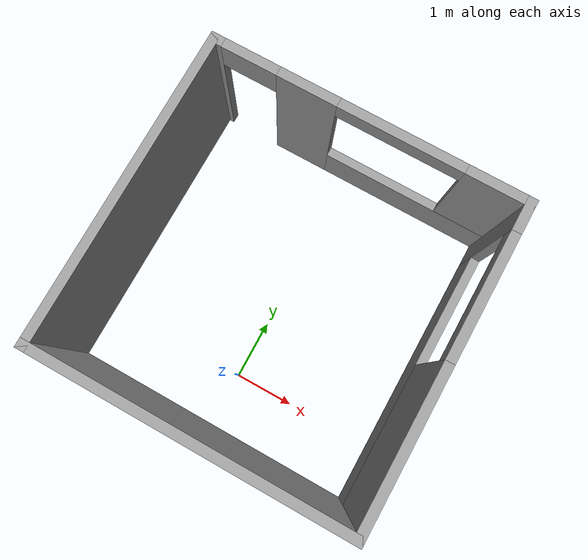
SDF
<?xml version='1.0'?>
<sdf version='1.7'>
  <model name='office_environment'>
    <pose>0 1.5 0 0 -0 0</pose>
    <link name='Wall_30'>
      <collision name='Wall_30_Collision'>
        <geometry>
          <box>
            <size>5.15 0.15 2.5</size>
          </box>
        </geometry>
        <pose>0 0 1.25 0 -0 0</pose>
      </collision>
      <visual name='Wall_30_Visual'>
        <pose>0 0 1.25 0 -0 0</pose>
        <geometry>
          <box>
            <size>5.15 0.15 2.5</size>
          </box>
        </geometry>
        <material>
          <script>
            <uri>file://media/materials/scripts/gazebo.material</uri>
            <name>Gazebo/Grey</name>
          </script>
          <ambient>1 1 1 1</ambient>
        </material>
        <meta>
          <layer>0</layer>
        </meta>
      </visual>
      <pose>0 -2.5 0 0 -0 0</pose>
    </link>
    <link name='Wall_38'>
      <collision name='Wall_38_Collision'>
        <geometry>
          <box>
            <size>5.15 0.15 2.5</size>
          </box>
        </geometry>
        <pose>0 0 1.25 0 -0 0</pose>
      </collision>
      <visual name='Wall_38_Visual'>
        <pose>0 0 1.25 0 -0 0</pose>
        <geometry>
          <box>
            <size>5.15 0.15 2.5</size>
          </box>
        </geometry>
        <material>
          <script>
            <uri>file://media/materials/scripts/gazebo.material</uri>
            <name>Gazebo/Grey</name>
          </script>
          <ambient>1 1 1 1</ambient>
        </material>
        <meta>
          <layer>0</layer>
        </meta>
      </visual>
      <pose>-2.5 0 0 0 -0 1.5708</pose>
    </link>
    <link name='Wall_40'>
      <pose>0 2.5 0 0 -0 0</pose>
      <visual name='Wall_40_Visual_0'>
        <pose>-2.46031 0 1.25 0 -0 0</pose>
        <geometry>
          <box>
            <size>0.229383 0.15 2.5</size>
          </box>
        </geometry>
        <material>
          <script>
            <uri>file://media/materials/scripts/gazebo.material</uri>
            <name>Gazebo/Grey</name>
          </script>
          <ambient>1 1 1 1</ambient>
        </material>
        <meta>
          <layer>0</layer>
        </meta>
      </visual>
      <collision name='Wall_40_Collision_0'>
        <geometry>
          <box>
            <size>0.229383 0.15 2.5</size>
          </box>
        </geometry>
        <pose>-2.46031 0 1.25 0 -0 0</pose>
      </collision>
      <visual name='Wall_40_Visual_1'>
        <pose>-0.961522 0 1.25 0 -0 0</pose>
        <geometry>
          <box>
            <size>0.968191 0.15 2.5</size>
          </box>
        </geometry>
        <material>
          <script>
            <uri>file://media/materials/scripts/gazebo.material</uri>
            <name>Gazebo/Grey</name>
          </script>
          <ambient>1 1 1 1</ambient>
        </material>
        <meta>
          <layer>0</layer>
        </meta>
      </visual>
      <collision name='Wall_40_Collision_1'>
        <geometry>
          <box>
            <size>0.968191 0.15 2.5</size>
          </box>
        </geometry>
        <pose>-0.961522 0 1.25 0 -0 0</pose>
      </collision>
      <visual name='Wall_40_Visual_2'>
        <pose>1.04879 0 0.35 0 -0 0</pose>
        <geometry>
          <box>
            <size>3.05243 0.15 0.7</size>
          </box>
        </geometry>
        <material>
          <script>
            <uri>file://media/materials/scripts/gazebo.material</uri>
            <name>Gazebo/Grey</name>
          </script>
          <ambient>1 1 1 1</ambient>
        </material>
        <meta>
          <layer>0</layer>
        </meta>
      </visual>
      <collision name='Wall_40_Collision_2'>
        <geometry>
          <box>
            <size>3.05243 0.15 0.7</size>
          </box>
        </geometry>
        <pose>1.04879 0 0.35 0 -0 0</pose>
      </collision>
      <visual name='Wall_40_Visual_3'>
        <pose>2.04879 0 1.6 0 -0 0</pose>
        <geometry>
          <box>
            <size>1.05243 0.15 1.8</size>
          </box>
        </geometry>
        <material>
          <script>
            <uri>file://media/materials/scripts/gazebo.material</uri>
            <name>Gazebo/Grey</name>
          </script>
          <ambient>1 1 1 1</ambient>
        </material>
        <meta>
          <layer>0</layer>
        </meta>
      </visual>
      <collision name='Wall_40_Collision_3'>
        <geometry>
          <box>
            <size>1.05243 0.15 1.8</size>
          </box>
        </geometry>
        <pose>2.04879 0 1.6 0 -0 0</pose>
      </collision>
      <visual name='Wall_40_Visual_4'>
        <pose>-1.89562 0 2.25 0 -0 0</pose>
        <geometry>
          <box>
            <size>0.9 0.15 0.5</size>
          </box>
        </geometry>
        <material>
          <script>
            <uri>file://media/materials/scripts/gazebo.material</uri>
            <name>Gazebo/Grey</name>
          </script>
          <ambient>1 1 1 1</ambient>
        </material>
        <meta>
          <layer>0</layer>
        </meta>
      </visual>
      <collision name='Wall_40_Collision_4'>
        <geometry>
          <box>
            <size>0.9 0.15 0.5</size>
          </box>
        </geometry>
        <pose>-1.89562 0 2.25 0 -0 0</pose>
      </collision>
      <visual name='Wall_40_Visual_5'>
        <pose>0.522574 0 2.35 0 -0 0</pose>
        <geometry>
          <box>
            <size>2 0.15 0.3</size>
          </box>
        </geometry>
        <material>
          <script>
            <uri>file://media/materials/scripts/gazebo.material</uri>
            <name>Gazebo/Grey</name>
          </script>
          <ambient>1 1 1 1</ambient>
        </material>
        <meta>
          <layer>0</layer>
        </meta>
      </visual>
      <collision name='Wall_40_Collision_5'>
        <geometry>
          <box>
            <size>2 0.15 0.3</size>
          </box>
        </geometry>
        <pose>0.522574 0 2.35 0 -0 0</pose>
      </collision>
    </link>
    <link name='Wall_42'>
      <pose>2.5 0 0 0 -0 -1.5708</pose>
      <visual name='Wall_42_Visual_0'>
        <pose>-2.30156 0 1.25 0 -0 0</pose>
        <geometry>
          <box>
            <size>0.546877 0.15 2.5</size>
          </box>
        </geometry>
        <material>
          <script>
            <uri>file://media/materials/scripts/gazebo.material</uri>
            <name>Gazebo/Grey</name>
          </script>
          <ambient>1 1 1 1</ambient>
        </material>
        <meta>
          <layer>0</layer>
        </meta>
      </visual>
      <collision name='Wall_42_Collision_0'>
        <geometry>
          <box>
            <size>0.546877 0.15 2.5</size>
          </box>
        </geometry>
        <pose>-2.30156 0 1.25 0 -0 0</pose>
      </collision>
      <visual name='Wall_42_Visual_1'>
        <pose>0.273438 0 0.35 0 -0 0</pose>
        <geometry>
          <box>
            <size>4.60312 0.15 0.7</size>
          </box>
        </geometry>
        <material>
          <script>
            <uri>file://media/materials/scripts/gazebo.material</uri>
            <name>Gazebo/Grey</name>
          </script>
          <ambient>1 1 1 1</ambient>
        </material>
        <meta>
          <layer>0</layer>
        </meta>
      </visual>
      <collision name='Wall_42_Collision_1'>
        <geometry>
          <box>
            <size>4.60312 0.15 0.7</size>
          </box>
        </geometry>
        <pose>0.273438 0 0.35 0 -0 0</pose>
      </collision>
      <visual name='Wall_42_Visual_2'>
        <pose>1.27344 0 1.6 0 -0 0</pose>
        <geometry>
          <box>
            <size>2.60312 0.15 1.8</size>
          </box>
        </geometry>
        <material>
          <script>
            <uri>file://media/materials/scripts/gazebo.material</uri>
            <name>Gazebo/Grey</name>
          </script>
          <ambient>1 1 1 1</ambient>
        </material>
        <meta>
          <layer>0</layer>
        </meta>
      </visual>
      <collision name='Wall_42_Collision_2'>
        <geometry>
          <box>
            <size>2.60312 0.15 1.8</size>
          </box>
        </geometry>
        <pose>1.27344 0 1.6 0 -0 0</pose>
      </collision>
      <visual name='Wall_42_Visual_3'>
        <pose>-1.02812 0 2.35 0 -0 0</pose>
        <geometry>
          <box>
            <size>2 0.15 0.3</size>
          </box>
        </geometry>
        <material>
          <script>
            <uri>file://media/materials/scripts/gazebo.material</uri>
            <name>Gazebo/Grey</name>
          </script>
          <ambient>1 1 1 1</ambient>
        </material>
        <meta>
          <layer>0</layer>
        </meta>
      </visual>
      <collision name='Wall_42_Collision_3'>
        <geometry>
          <box>
            <size>2 0.15 0.3</size>
          </box>
        </geometry>
        <pose>-1.02812 0 2.35 0 -0 0</pose>
      </collision>
    </link>
    <static>1</static>
  </model>
</sdf>
